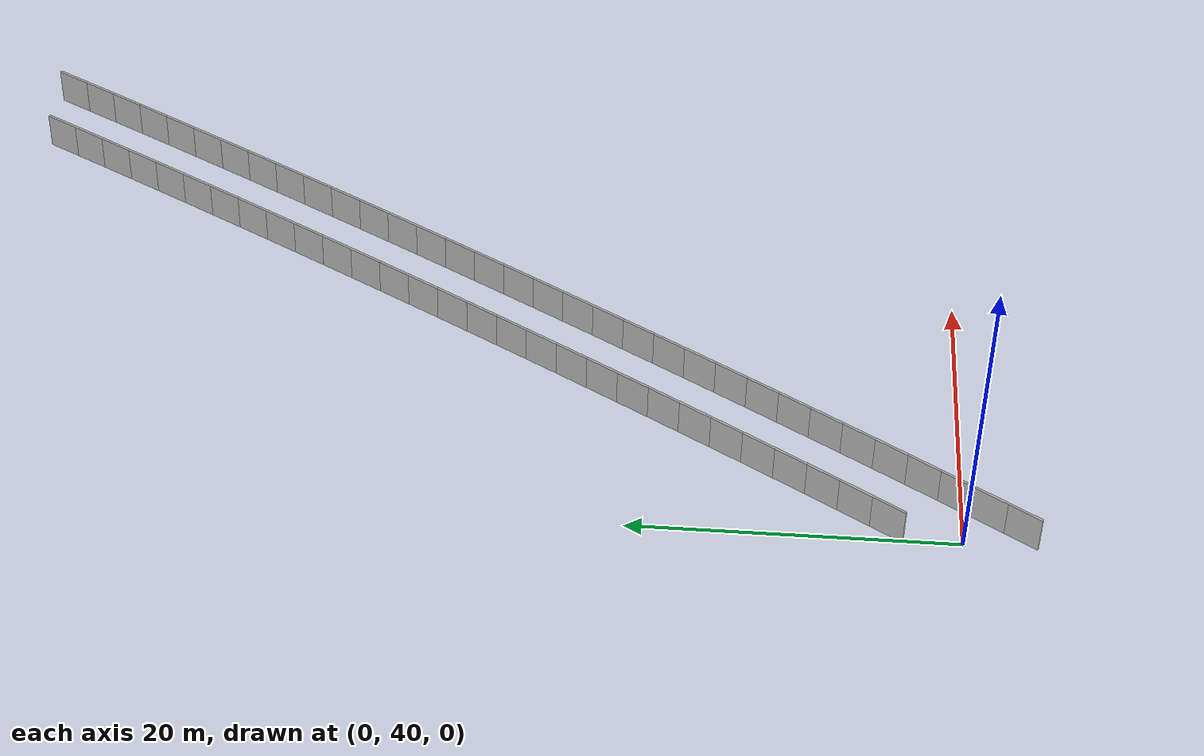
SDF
<?xml version="1.0" ?>
<sdf version="1.6">
  <model name="sps_2207">
    <pose frame="">0 0 0 0 -0 0</pose>
    <static>1</static>
    <self_collide>0</self_collide>
    <allow_auto_disable>0</allow_auto_disable>
    <link name="Wall4354">
      <kinematic>0</kinematic>
      <gravity>1</gravity>
      <self_collide>0</self_collide>
      <collision name="collision">
        <geometry>
          <box>
            <size>2.25463 0.15 2.5</size>
          </box>
        </geometry>
        <pose frame="">0 0 0 0 -0 0</pose>
      </collision>
      <visual name="visual">
        <geometry>
          <box>
            <size>2.25463 0.15 2.5</size>
          </box>
        </geometry>
        <pose frame="">0 0 0 0 -0 0</pose>
        <cast_shadows>1</cast_shadows>
        <transparency>0.0</transparency>
      </visual>
      <pose frame="">0.573356 36.5674 1.25 0 -0 1.01676</pose>
    </link>
    <link name="Wall4355">
      <kinematic>0</kinematic>
      <gravity>1</gravity>
      <self_collide>0</self_collide>
      <collision name="collision">
        <geometry>
          <box>
            <size>2.2547 0.15 2.5</size>
          </box>
        </geometry>
        <pose frame="">0 0 0 0 -0 0</pose>
      </collision>
      <visual name="visual">
        <geometry>
          <box>
            <size>2.2547 0.15 2.5</size>
          </box>
        </geometry>
        <pose frame="">0 0 0 0 -0 0</pose>
        <cast_shadows>1</cast_shadows>
        <transparency>0.0</transparency>
      </visual>
      <pose frame="">1.75716 38.4863 1.25 0 -0 1.01929</pose>
    </link>
    <link name="Wall4356">
      <kinematic>0</kinematic>
      <gravity>1</gravity>
      <self_collide>0</self_collide>
      <collision name="collision">
        <geometry>
          <box>
            <size>2.25464 0.15 2.5</size>
          </box>
        </geometry>
        <pose frame="">0 0 0 0 -0 0</pose>
      </collision>
      <visual name="visual">
        <geometry>
          <box>
            <size>2.25464 0.15 2.5</size>
          </box>
        </geometry>
        <pose frame="">0 0 0 0 -0 0</pose>
        <cast_shadows>1</cast_shadows>
        <transparency>0.0</transparency>
      </visual>
      <pose frame="">2.93636 40.408 1.25 0 -0 1.02156</pose>
    </link>
    <link name="Wall4357">
      <kinematic>0</kinematic>
      <gravity>1</gravity>
      <self_collide>0</self_collide>
      <collision name="collision">
        <geometry>
          <box>
            <size>2.25463 0.15 2.5</size>
          </box>
        </geometry>
        <pose frame="">0 0 0 0 -0 0</pose>
      </collision>
      <visual name="visual">
        <geometry>
          <box>
            <size>2.25463 0.15 2.5</size>
          </box>
        </geometry>
        <pose frame="">0 0 0 0 -0 0</pose>
        <cast_shadows>1</cast_shadows>
        <transparency>0.0</transparency>
      </visual>
      <pose frame="">4.11095 42.3325 1.25 0 -0 1.02406</pose>
    </link>
    <link name="Wall4358">
      <kinematic>0</kinematic>
      <gravity>1</gravity>
      <self_collide>0</self_collide>
      <collision name="collision">
        <geometry>
          <box>
            <size>2.25459 0.15 2.5</size>
          </box>
        </geometry>
        <pose frame="">0 0 0 0 -0 0</pose>
      </collision>
      <visual name="visual">
        <geometry>
          <box>
            <size>2.25459 0.15 2.5</size>
          </box>
        </geometry>
        <pose frame="">0 0 0 0 -0 0</pose>
        <cast_shadows>1</cast_shadows>
        <transparency>0.0</transparency>
      </visual>
      <pose frame="">5.28094 44.2598 1.25 0 -0 1.02633</pose>
    </link>
    <link name="Wall4359">
      <kinematic>0</kinematic>
      <gravity>1</gravity>
      <self_collide>0</self_collide>
      <collision name="collision">
        <geometry>
          <box>
            <size>2.25531 0.15 2.5</size>
          </box>
        </geometry>
        <pose frame="">0 0 0 0 -0 0</pose>
      </collision>
      <visual name="visual">
        <geometry>
          <box>
            <size>2.25531 0.15 2.5</size>
          </box>
        </geometry>
        <pose frame="">0 0 0 0 -0 0</pose>
        <cast_shadows>1</cast_shadows>
        <transparency>0.0</transparency>
      </visual>
      <pose frame="">6.44674 46.19 1.25 0 -0 1.02858</pose>
    </link>
    <link name="Wall4360">
      <kinematic>0</kinematic>
      <gravity>1</gravity>
      <self_collide>0</self_collide>
      <collision name="collision">
        <geometry>
          <box>
            <size>2.25468 0.15 2.5</size>
          </box>
        </geometry>
        <pose frame="">0 0 0 0 -0 0</pose>
      </collision>
      <visual name="visual">
        <geometry>
          <box>
            <size>2.25468 0.15 2.5</size>
          </box>
        </geometry>
        <pose frame="">0 0 0 0 -0 0</pose>
        <cast_shadows>1</cast_shadows>
        <transparency>0.0</transparency>
      </visual>
      <pose frame="">7.60796 48.123 1.25 0 -0 1.0311</pose>
    </link>
    <link name="Wall4361">
      <kinematic>0</kinematic>
      <gravity>1</gravity>
      <self_collide>0</self_collide>
      <collision name="collision">
        <geometry>
          <box>
            <size>2.25437 0.15 2.5</size>
          </box>
        </geometry>
        <pose frame="">0 0 0 0 -0 0</pose>
      </collision>
      <visual name="visual">
        <geometry>
          <box>
            <size>2.25437 0.15 2.5</size>
          </box>
        </geometry>
        <pose frame="">0 0 0 0 -0 0</pose>
        <cast_shadows>1</cast_shadows>
        <transparency>0.0</transparency>
      </visual>
      <pose frame="">8.76415 50.0585 1.25 0 -0 1.03354</pose>
    </link>
    <link name="Wall4362">
      <kinematic>0</kinematic>
      <gravity>1</gravity>
      <self_collide>0</self_collide>
      <collision name="collision">
        <geometry>
          <box>
            <size>2.25463 0.15 2.5</size>
          </box>
        </geometry>
        <pose frame="">0 0 0 0 -0 0</pose>
      </collision>
      <visual name="visual">
        <geometry>
          <box>
            <size>2.25463 0.15 2.5</size>
          </box>
        </geometry>
        <pose frame="">0 0 0 0 -0 0</pose>
        <cast_shadows>1</cast_shadows>
        <transparency>0.0</transparency>
      </visual>
      <pose frame="">9.91573 51.9967 1.25 0 -0 1.03584</pose>
    </link>
    <link name="Wall4363">
      <kinematic>0</kinematic>
      <gravity>1</gravity>
      <self_collide>0</self_collide>
      <collision name="collision">
        <geometry>
          <box>
            <size>2.25482 0.15 2.5</size>
          </box>
        </geometry>
        <pose frame="">0 0 0 0 -0 0</pose>
      </collision>
      <visual name="visual">
        <geometry>
          <box>
            <size>2.25482 0.15 2.5</size>
          </box>
        </geometry>
        <pose frame="">0 0 0 0 -0 0</pose>
        <cast_shadows>1</cast_shadows>
        <transparency>0.0</transparency>
      </visual>
      <pose frame="">11.0629 53.9378 1.25 0 -0 1.03825</pose>
    </link>
    <link name="Wall4364">
      <kinematic>0</kinematic>
      <gravity>1</gravity>
      <self_collide>0</self_collide>
      <collision name="collision">
        <geometry>
          <box>
            <size>2.25383 0.15 2.5</size>
          </box>
        </geometry>
        <pose frame="">0 0 0 0 -0 0</pose>
      </collision>
      <visual name="visual">
        <geometry>
          <box>
            <size>2.25383 0.15 2.5</size>
          </box>
        </geometry>
        <pose frame="">0 0 0 0 -0 0</pose>
        <cast_shadows>1</cast_shadows>
        <transparency>0.0</transparency>
      </visual>
      <pose frame="">12.2052 55.8813 1.25 0 -0 1.0406</pose>
    </link>
    <link name="Wall4365">
      <kinematic>0</kinematic>
      <gravity>1</gravity>
      <self_collide>0</self_collide>
      <collision name="collision">
        <geometry>
          <box>
            <size>2.25475 0.15 2.5</size>
          </box>
        </geometry>
        <pose frame="">0 0 0 0 -0 0</pose>
      </collision>
      <visual name="visual">
        <geometry>
          <box>
            <size>2.25475 0.15 2.5</size>
          </box>
        </geometry>
        <pose frame="">0 0 0 0 -0 0</pose>
        <cast_shadows>1</cast_shadows>
        <transparency>0.0</transparency>
      </visual>
      <pose frame="">13.3428 57.8275 1.25 0 -0 1.04306</pose>
    </link>
    <link name="Wall4366">
      <kinematic>0</kinematic>
      <gravity>1</gravity>
      <self_collide>0</self_collide>
      <collision name="collision">
        <geometry>
          <box>
            <size>2.25478 0.15 2.5</size>
          </box>
        </geometry>
        <pose frame="">0 0 0 0 -0 0</pose>
      </collision>
      <visual name="visual">
        <geometry>
          <box>
            <size>2.25478 0.15 2.5</size>
          </box>
        </geometry>
        <pose frame="">0 0 0 0 -0 0</pose>
        <cast_shadows>1</cast_shadows>
        <transparency>0.0</transparency>
      </visual>
      <pose frame="">14.476 59.7768 1.25 0 -0 1.04536</pose>
    </link>
    <link name="Wall4367">
      <kinematic>0</kinematic>
      <gravity>1</gravity>
      <self_collide>0</self_collide>
      <collision name="collision">
        <geometry>
          <box>
            <size>2.25446 0.15 2.5</size>
          </box>
        </geometry>
        <pose frame="">0 0 0 0 -0 0</pose>
      </collision>
      <visual name="visual">
        <geometry>
          <box>
            <size>2.25446 0.15 2.5</size>
          </box>
        </geometry>
        <pose frame="">0 0 0 0 -0 0</pose>
        <cast_shadows>1</cast_shadows>
        <transparency>0.0</transparency>
      </visual>
      <pose frame="">15.6046 61.7286 1.25 0 -0 1.04771</pose>
    </link>
    <link name="Wall4368">
      <kinematic>0</kinematic>
      <gravity>1</gravity>
      <self_collide>0</self_collide>
      <collision name="collision">
        <geometry>
          <box>
            <size>2.25458 0.15 2.5</size>
          </box>
        </geometry>
        <pose frame="">0 0 0 0 -0 0</pose>
      </collision>
      <visual name="visual">
        <geometry>
          <box>
            <size>2.25458 0.15 2.5</size>
          </box>
        </geometry>
        <pose frame="">0 0 0 0 -0 0</pose>
        <cast_shadows>1</cast_shadows>
        <transparency>0.0</transparency>
      </visual>
      <pose frame="">16.7285 63.683 1.25 0 -0 1.05012</pose>
    </link>
    <link name="Wall4369">
      <kinematic>0</kinematic>
      <gravity>1</gravity>
      <self_collide>0</self_collide>
      <collision name="collision">
        <geometry>
          <box>
            <size>2.25453 0.15 2.5</size>
          </box>
        </geometry>
        <pose frame="">0 0 0 0 -0 0</pose>
      </collision>
      <visual name="visual">
        <geometry>
          <box>
            <size>2.25453 0.15 2.5</size>
          </box>
        </geometry>
        <pose frame="">0 0 0 0 -0 0</pose>
        <cast_shadows>1</cast_shadows>
        <transparency>0.0</transparency>
      </visual>
      <pose frame="">17.8478 65.6401 1.25 0 -0 1.05245</pose>
    </link>
    <link name="Wall4370">
      <kinematic>0</kinematic>
      <gravity>1</gravity>
      <self_collide>0</self_collide>
      <collision name="collision">
        <geometry>
          <box>
            <size>2.25489 0.15 2.5</size>
          </box>
        </geometry>
        <pose frame="">0 0 0 0 -0 0</pose>
      </collision>
      <visual name="visual">
        <geometry>
          <box>
            <size>2.25489 0.15 2.5</size>
          </box>
        </geometry>
        <pose frame="">0 0 0 0 -0 0</pose>
        <cast_shadows>1</cast_shadows>
        <transparency>0.0</transparency>
      </visual>
      <pose frame="">18.9625 67.6 1.25 0 -0 1.0549</pose>
    </link>
    <link name="Wall4371">
      <kinematic>0</kinematic>
      <gravity>1</gravity>
      <self_collide>0</self_collide>
      <collision name="collision">
        <geometry>
          <box>
            <size>2.25441 0.15 2.5</size>
          </box>
        </geometry>
        <pose frame="">0 0 0 0 -0 0</pose>
      </collision>
      <visual name="visual">
        <geometry>
          <box>
            <size>2.25441 0.15 2.5</size>
          </box>
        </geometry>
        <pose frame="">0 0 0 0 -0 0</pose>
        <cast_shadows>1</cast_shadows>
        <transparency>0.0</transparency>
      </visual>
      <pose frame="">20.0724 69.5625 1.25 0 -0 1.05721</pose>
    </link>
    <link name="Wall4372">
      <kinematic>0</kinematic>
      <gravity>1</gravity>
      <self_collide>0</self_collide>
      <collision name="collision">
        <geometry>
          <box>
            <size>2.25467 0.15 2.5</size>
          </box>
        </geometry>
        <pose frame="">0 0 0 0 -0 0</pose>
      </collision>
      <visual name="visual">
        <geometry>
          <box>
            <size>2.25467 0.15 2.5</size>
          </box>
        </geometry>
        <pose frame="">0 0 0 0 -0 0</pose>
        <cast_shadows>1</cast_shadows>
        <transparency>0.0</transparency>
      </visual>
      <pose frame="">21.1778 71.5275 1.25 0 -0 1.0596</pose>
    </link>
    <link name="Wall4373">
      <kinematic>0</kinematic>
      <gravity>1</gravity>
      <self_collide>0</self_collide>
      <collision name="collision">
        <geometry>
          <box>
            <size>2.2548 0.15 2.5</size>
          </box>
        </geometry>
        <pose frame="">0 0 0 0 -0 0</pose>
      </collision>
      <visual name="visual">
        <geometry>
          <box>
            <size>2.2548 0.15 2.5</size>
          </box>
        </geometry>
        <pose frame="">0 0 0 0 -0 0</pose>
        <cast_shadows>1</cast_shadows>
        <transparency>0.0</transparency>
      </visual>
      <pose frame="">22.2785 73.4953 1.25 0 -0 1.06199</pose>
    </link>
    <link name="Wall4374">
      <kinematic>0</kinematic>
      <gravity>1</gravity>
      <self_collide>0</self_collide>
      <collision name="collision">
        <geometry>
          <box>
            <size>2.2545 0.15 2.5</size>
          </box>
        </geometry>
        <pose frame="">0 0 0 0 -0 0</pose>
      </collision>
      <visual name="visual">
        <geometry>
          <box>
            <size>2.2545 0.15 2.5</size>
          </box>
        </geometry>
        <pose frame="">0 0 0 0 -0 0</pose>
        <cast_shadows>1</cast_shadows>
        <transparency>0.0</transparency>
      </visual>
      <pose frame="">23.3744 75.4657 1.25 0 -0 1.06446</pose>
    </link>
    <link name="Wall4375">
      <kinematic>0</kinematic>
      <gravity>1</gravity>
      <self_collide>0</self_collide>
      <collision name="collision">
        <geometry>
          <box>
            <size>2.25473 0.15 2.5</size>
          </box>
        </geometry>
        <pose frame="">0 0 0 0 -0 0</pose>
      </collision>
      <visual name="visual">
        <geometry>
          <box>
            <size>2.25473 0.15 2.5</size>
          </box>
        </geometry>
        <pose frame="">0 0 0 0 -0 0</pose>
        <cast_shadows>1</cast_shadows>
        <transparency>0.0</transparency>
      </visual>
      <pose frame="">24.4657 77.4386 1.25 0 -0 1.06662</pose>
    </link>
    <link name="Wall4376">
      <kinematic>0</kinematic>
      <gravity>1</gravity>
      <self_collide>0</self_collide>
      <collision name="collision">
        <geometry>
          <box>
            <size>2.25459 0.15 2.5</size>
          </box>
        </geometry>
        <pose frame="">0 0 0 0 -0 0</pose>
      </collision>
      <visual name="visual">
        <geometry>
          <box>
            <size>2.25459 0.15 2.5</size>
          </box>
        </geometry>
        <pose frame="">0 0 0 0 -0 0</pose>
        <cast_shadows>1</cast_shadows>
        <transparency>0.0</transparency>
      </visual>
      <pose frame="">25.5524 79.4141 1.25 0 -0 1.06915</pose>
    </link>
    <link name="Wall4377">
      <kinematic>0</kinematic>
      <gravity>1</gravity>
      <self_collide>0</self_collide>
      <collision name="collision">
        <geometry>
          <box>
            <size>2.2547 0.15 2.5</size>
          </box>
        </geometry>
        <pose frame="">0 0 0 0 -0 0</pose>
      </collision>
      <visual name="visual">
        <geometry>
          <box>
            <size>2.2547 0.15 2.5</size>
          </box>
        </geometry>
        <pose frame="">0 0 0 0 -0 0</pose>
        <cast_shadows>1</cast_shadows>
        <transparency>0.0</transparency>
      </visual>
      <pose frame="">26.6342 81.3922 1.25 0 -0 1.07149</pose>
    </link>
    <link name="Wall4378">
      <kinematic>0</kinematic>
      <gravity>1</gravity>
      <self_collide>0</self_collide>
      <collision name="collision">
        <geometry>
          <box>
            <size>2.25443 0.15 2.5</size>
          </box>
        </geometry>
        <pose frame="">0 0 0 0 -0 0</pose>
      </collision>
      <visual name="visual">
        <geometry>
          <box>
            <size>2.25443 0.15 2.5</size>
          </box>
        </geometry>
        <pose frame="">0 0 0 0 -0 0</pose>
        <cast_shadows>1</cast_shadows>
        <transparency>0.0</transparency>
      </visual>
      <pose frame="">27.7114 83.3728 1.25 0 -0 1.07392</pose>
    </link>
    <link name="Wall4379">
      <kinematic>0</kinematic>
      <gravity>1</gravity>
      <self_collide>0</self_collide>
      <collision name="collision">
        <geometry>
          <box>
            <size>2.25472 0.15 2.5</size>
          </box>
        </geometry>
        <pose frame="">0 0 0 0 -0 0</pose>
      </collision>
      <visual name="visual">
        <geometry>
          <box>
            <size>2.25472 0.15 2.5</size>
          </box>
        </geometry>
        <pose frame="">0 0 0 0 -0 0</pose>
        <cast_shadows>1</cast_shadows>
        <transparency>0.0</transparency>
      </visual>
      <pose frame="">28.7838 85.356 1.25 0 -0 1.07624</pose>
    </link>
    <link name="Wall4380">
      <kinematic>0</kinematic>
      <gravity>1</gravity>
      <self_collide>0</self_collide>
      <collision name="collision">
        <geometry>
          <box>
            <size>2.25487 0.15 2.5</size>
          </box>
        </geometry>
        <pose frame="">0 0 0 0 -0 0</pose>
      </collision>
      <visual name="visual">
        <geometry>
          <box>
            <size>2.25487 0.15 2.5</size>
          </box>
        </geometry>
        <pose frame="">0 0 0 0 -0 0</pose>
        <cast_shadows>1</cast_shadows>
        <transparency>0.0</transparency>
      </visual>
      <pose frame="">29.8517 87.3419 1.25 0 -0 1.07858</pose>
    </link>
    <link name="Wall4381">
      <kinematic>0</kinematic>
      <gravity>1</gravity>
      <self_collide>0</self_collide>
      <collision name="collision">
        <geometry>
          <box>
            <size>2.25405 0.15 2.5</size>
          </box>
        </geometry>
        <pose frame="">0 0 0 0 -0 0</pose>
      </collision>
      <visual name="visual">
        <geometry>
          <box>
            <size>2.25405 0.15 2.5</size>
          </box>
        </geometry>
        <pose frame="">0 0 0 0 -0 0</pose>
        <cast_shadows>1</cast_shadows>
        <transparency>0.0</transparency>
      </visual>
      <pose frame="">30.9145 89.3301 1.25 0 -0 1.08121</pose>
    </link>
    <link name="Wall4382">
      <kinematic>0</kinematic>
      <gravity>1</gravity>
      <self_collide>0</self_collide>
      <collision name="collision">
        <geometry>
          <box>
            <size>2.25453 0.15 2.5</size>
          </box>
        </geometry>
        <pose frame="">0 0 0 0 -0 0</pose>
      </collision>
      <visual name="visual">
        <geometry>
          <box>
            <size>2.25453 0.15 2.5</size>
          </box>
        </geometry>
        <pose frame="">0 0 0 0 -0 0</pose>
        <cast_shadows>1</cast_shadows>
        <transparency>0.0</transparency>
      </visual>
      <pose frame="">31.9725 91.3207 1.25 0 -0 1.08334</pose>
    </link>
    <link name="Wall4383">
      <kinematic>0</kinematic>
      <gravity>1</gravity>
      <self_collide>0</self_collide>
      <collision name="collision">
        <geometry>
          <box>
            <size>2.25477 0.15 2.5</size>
          </box>
        </geometry>
        <pose frame="">0 0 0 0 -0 0</pose>
      </collision>
      <visual name="visual">
        <geometry>
          <box>
            <size>2.25477 0.15 2.5</size>
          </box>
        </geometry>
        <pose frame="">0 0 0 0 -0 0</pose>
        <cast_shadows>1</cast_shadows>
        <transparency>0.0</transparency>
      </visual>
      <pose frame="">33.0261 93.314 1.25 0 -0 1.0857</pose>
    </link>
    <link name="Wall4384">
      <kinematic>0</kinematic>
      <gravity>1</gravity>
      <self_collide>0</self_collide>
      <collision name="collision">
        <geometry>
          <box>
            <size>2.25471 0.15 2.5</size>
          </box>
        </geometry>
        <pose frame="">0 0 0 0 -0 0</pose>
      </collision>
      <visual name="visual">
        <geometry>
          <box>
            <size>2.25471 0.15 2.5</size>
          </box>
        </geometry>
        <pose frame="">0 0 0 0 -0 0</pose>
        <cast_shadows>1</cast_shadows>
        <transparency>0.0</transparency>
      </visual>
      <pose frame="">34.075 95.3099 1.25 0 -0 1.08819</pose>
    </link>
    <link name="Wall4385">
      <kinematic>0</kinematic>
      <gravity>1</gravity>
      <self_collide>0</self_collide>
      <collision name="collision">
        <geometry>
          <box>
            <size>2.25445 0.15 2.5</size>
          </box>
        </geometry>
        <pose frame="">0 0 0 0 -0 0</pose>
      </collision>
      <visual name="visual">
        <geometry>
          <box>
            <size>2.25445 0.15 2.5</size>
          </box>
        </geometry>
        <pose frame="">0 0 0 0 -0 0</pose>
        <cast_shadows>1</cast_shadows>
        <transparency>0.0</transparency>
      </visual>
      <pose frame="">35.119 97.3082 1.25 0 -0 1.09051</pose>
    </link>
    <link name="Wall4386">
      <kinematic>0</kinematic>
      <gravity>1</gravity>
      <self_collide>0</self_collide>
      <collision name="collision">
        <geometry>
          <box>
            <size>2.2548 0.15 2.5</size>
          </box>
        </geometry>
        <pose frame="">0 0 0 0 -0 0</pose>
      </collision>
      <visual name="visual">
        <geometry>
          <box>
            <size>2.2548 0.15 2.5</size>
          </box>
        </geometry>
        <pose frame="">0 0 0 0 -0 0</pose>
        <cast_shadows>1</cast_shadows>
        <transparency>0.0</transparency>
      </visual>
      <pose frame="">36.1583 99.309 1.25 0 -0 1.09291</pose>
    </link>
    <link name="Wall6082">
      <kinematic>0</kinematic>
      <gravity>1</gravity>
      <self_collide>0</self_collide>
      <collision name="collision">
        <geometry>
          <box>
            <size>2.24485 0.15 2.5</size>
          </box>
        </geometry>
        <pose frame="">0 0 0 0 -0 0</pose>
      </collision>
      <visual name="visual">
        <geometry>
          <box>
            <size>2.24485 0.15 2.5</size>
          </box>
        </geometry>
        <pose frame="">0 0 0 0 -0 0</pose>
        <cast_shadows>1</cast_shadows>
        <transparency>0.0</transparency>
      </visual>
      <pose frame="">0.575553 44.4854 1.25 0 -0 1.0239</pose>
    </link>
    <link name="Wall6083">
      <kinematic>0</kinematic>
      <gravity>1</gravity>
      <self_collide>0</self_collide>
      <collision name="collision">
        <geometry>
          <box>
            <size>2.2447 0.15 2.5</size>
          </box>
        </geometry>
        <pose frame="">0 0 0 0 -0 0</pose>
      </collision>
      <visual name="visual">
        <geometry>
          <box>
            <size>2.2447 0.15 2.5</size>
          </box>
        </geometry>
        <pose frame="">0 0 0 0 -0 0</pose>
        <cast_shadows>1</cast_shadows>
        <transparency>0.0</transparency>
      </visual>
      <pose frame="">1.74056 46.4042 1.25 0 -0 1.02637</pose>
    </link>
    <link name="Wall6084">
      <kinematic>0</kinematic>
      <gravity>1</gravity>
      <self_collide>0</self_collide>
      <collision name="collision">
        <geometry>
          <box>
            <size>2.24479 0.15 2.5</size>
          </box>
        </geometry>
        <pose frame="">0 0 0 0 -0 0</pose>
      </collision>
      <visual name="visual">
        <geometry>
          <box>
            <size>2.24479 0.15 2.5</size>
          </box>
        </geometry>
        <pose frame="">0 0 0 0 -0 0</pose>
        <cast_shadows>1</cast_shadows>
        <transparency>0.0</transparency>
      </visual>
      <pose frame="">2.90087 48.3258 1.25 0 -0 1.02877</pose>
    </link>
    <link name="Wall6085">
      <kinematic>0</kinematic>
      <gravity>1</gravity>
      <self_collide>0</self_collide>
      <collision name="collision">
        <geometry>
          <box>
            <size>2.24469 0.15 2.5</size>
          </box>
        </geometry>
        <pose frame="">0 0 0 0 -0 0</pose>
      </collision>
      <visual name="visual">
        <geometry>
          <box>
            <size>2.24469 0.15 2.5</size>
          </box>
        </geometry>
        <pose frame="">0 0 0 0 -0 0</pose>
        <cast_shadows>1</cast_shadows>
        <transparency>0.0</transparency>
      </visual>
      <pose frame="">4.05666 50.2501 1.25 0 -0 1.03106</pose>
    </link>
    <link name="Wall6086">
      <kinematic>0</kinematic>
      <gravity>1</gravity>
      <self_collide>0</self_collide>
      <collision name="collision">
        <geometry>
          <box>
            <size>2.24491 0.15 2.5</size>
          </box>
        </geometry>
        <pose frame="">0 0 0 0 -0 0</pose>
      </collision>
      <visual name="visual">
        <geometry>
          <box>
            <size>2.24491 0.15 2.5</size>
          </box>
        </geometry>
        <pose frame="">0 0 0 0 -0 0</pose>
        <cast_shadows>1</cast_shadows>
        <transparency>0.0</transparency>
      </visual>
      <pose frame="">5.20794 52.1772 1.25 0 -0 1.0335</pose>
    </link>
    <link name="Wall6087">
      <kinematic>0</kinematic>
      <gravity>1</gravity>
      <self_collide>0</self_collide>
      <collision name="collision">
        <geometry>
          <box>
            <size>2.24536 0.15 2.5</size>
          </box>
        </geometry>
        <pose frame="">0 0 0 0 -0 0</pose>
      </collision>
      <visual name="visual">
        <geometry>
          <box>
            <size>2.24536 0.15 2.5</size>
          </box>
        </geometry>
        <pose frame="">0 0 0 0 -0 0</pose>
        <cast_shadows>1</cast_shadows>
        <transparency>0.0</transparency>
      </visual>
      <pose frame="">6.35485 54.1073 1.25 0 -0 1.03577</pose>
    </link>
    <link name="Wall6088">
      <kinematic>0</kinematic>
      <gravity>1</gravity>
      <self_collide>0</self_collide>
      <collision name="collision">
        <geometry>
          <box>
            <size>2.24405 0.15 2.5</size>
          </box>
        </geometry>
        <pose frame="">0 0 0 0 -0 0</pose>
      </collision>
      <visual name="visual">
        <geometry>
          <box>
            <size>2.24405 0.15 2.5</size>
          </box>
        </geometry>
        <pose frame="">0 0 0 0 -0 0</pose>
        <cast_shadows>1</cast_shadows>
        <transparency>0.0</transparency>
      </visual>
      <pose frame="">7.49685 56.0398 1.25 0 -0 1.03836</pose>
    </link>
    <link name="Wall6089">
      <kinematic>0</kinematic>
      <gravity>1</gravity>
      <self_collide>0</self_collide>
      <collision name="collision">
        <geometry>
          <box>
            <size>2.24468 0.15 2.5</size>
          </box>
        </geometry>
        <pose frame="">0 0 0 0 -0 0</pose>
      </collision>
      <visual name="visual">
        <geometry>
          <box>
            <size>2.24468 0.15 2.5</size>
          </box>
        </geometry>
        <pose frame="">0 0 0 0 -0 0</pose>
        <cast_shadows>1</cast_shadows>
        <transparency>0.0</transparency>
      </visual>
      <pose frame="">8.63393 57.9748 1.25 0 -0 1.04067</pose>
    </link>
    <link name="Wall6090">
      <kinematic>0</kinematic>
      <gravity>1</gravity>
      <self_collide>0</self_collide>
      <collision name="collision">
        <geometry>
          <box>
            <size>2.24482 0.15 2.5</size>
          </box>
        </geometry>
        <pose frame="">0 0 0 0 -0 0</pose>
      </collision>
      <visual name="visual">
        <geometry>
          <box>
            <size>2.24482 0.15 2.5</size>
          </box>
        </geometry>
        <pose frame="">0 0 0 0 -0 0</pose>
        <cast_shadows>1</cast_shadows>
        <transparency>0.0</transparency>
      </visual>
      <pose frame="">9.76684 59.9127 1.25 0 -0 1.04288</pose>
    </link>
    <link name="Wall6091">
      <kinematic>0</kinematic>
      <gravity>1</gravity>
      <self_collide>0</self_collide>
      <collision name="collision">
        <geometry>
          <box>
            <size>2.24486 0.15 2.5</size>
          </box>
        </geometry>
        <pose frame="">0 0 0 0 -0 0</pose>
      </collision>
      <visual name="visual">
        <geometry>
          <box>
            <size>2.24486 0.15 2.5</size>
          </box>
        </geometry>
        <pose frame="">0 0 0 0 -0 0</pose>
        <cast_shadows>1</cast_shadows>
        <transparency>0.0</transparency>
      </visual>
      <pose frame="">10.8953 61.8533 1.25 0 -0 1.04534</pose>
    </link>
    <link name="Wall6092">
      <kinematic>0</kinematic>
      <gravity>1</gravity>
      <self_collide>0</self_collide>
      <collision name="collision">
        <geometry>
          <box>
            <size>2.24476 0.15 2.5</size>
          </box>
        </geometry>
        <pose frame="">0 0 0 0 -0 0</pose>
      </collision>
      <visual name="visual">
        <geometry>
          <box>
            <size>2.24476 0.15 2.5</size>
          </box>
        </geometry>
        <pose frame="">0 0 0 0 -0 0</pose>
        <cast_shadows>1</cast_shadows>
        <transparency>0.0</transparency>
      </visual>
      <pose frame="">12.019 63.7966 1.25 0 -0 1.0477</pose>
    </link>
    <link name="Wall6093">
      <kinematic>0</kinematic>
      <gravity>1</gravity>
      <self_collide>0</self_collide>
      <collision name="collision">
        <geometry>
          <box>
            <size>2.24484 0.15 2.5</size>
          </box>
        </geometry>
        <pose frame="">0 0 0 0 -0 0</pose>
      </collision>
      <visual name="visual">
        <geometry>
          <box>
            <size>2.24484 0.15 2.5</size>
          </box>
        </geometry>
        <pose frame="">0 0 0 0 -0 0</pose>
        <cast_shadows>1</cast_shadows>
        <transparency>0.0</transparency>
      </visual>
      <pose frame="">13.138 65.7426 1.25 0 -0 1.0502</pose>
    </link>
    <link name="Wall6094">
      <kinematic>0</kinematic>
      <gravity>1</gravity>
      <self_collide>0</self_collide>
      <collision name="collision">
        <geometry>
          <box>
            <size>2.24483 0.15 2.5</size>
          </box>
        </geometry>
        <pose frame="">0 0 0 0 -0 0</pose>
      </collision>
      <visual name="visual">
        <geometry>
          <box>
            <size>2.24483 0.15 2.5</size>
          </box>
        </geometry>
        <pose frame="">0 0 0 0 -0 0</pose>
        <cast_shadows>1</cast_shadows>
        <transparency>0.0</transparency>
      </visual>
      <pose frame="">14.2523 67.6913 1.25 0 -0 1.05245</pose>
    </link>
    <link name="Wall6095">
      <kinematic>0</kinematic>
      <gravity>1</gravity>
      <self_collide>0</self_collide>
      <collision name="collision">
        <geometry>
          <box>
            <size>2.24481 0.15 2.5</size>
          </box>
        </geometry>
        <pose frame="">0 0 0 0 -0 0</pose>
      </collision>
      <visual name="visual">
        <geometry>
          <box>
            <size>2.24481 0.15 2.5</size>
          </box>
        </geometry>
        <pose frame="">0 0 0 0 -0 0</pose>
        <cast_shadows>1</cast_shadows>
        <transparency>0.0</transparency>
      </visual>
      <pose frame="">15.3621 69.6426 1.25 0 -0 1.05489</pose>
    </link>
    <link name="Wall6096">
      <kinematic>0</kinematic>
      <gravity>1</gravity>
      <self_collide>0</self_collide>
      <collision name="collision">
        <geometry>
          <box>
            <size>2.24476 0.15 2.5</size>
          </box>
        </geometry>
        <pose frame="">0 0 0 0 -0 0</pose>
      </collision>
      <visual name="visual">
        <geometry>
          <box>
            <size>2.24476 0.15 2.5</size>
          </box>
        </geometry>
        <pose frame="">0 0 0 0 -0 0</pose>
        <cast_shadows>1</cast_shadows>
        <transparency>0.0</transparency>
      </visual>
      <pose frame="">16.4672 71.5965 1.25 0 -0 1.05725</pose>
    </link>
    <link name="Wall6097">
      <kinematic>0</kinematic>
      <gravity>1</gravity>
      <self_collide>0</self_collide>
      <collision name="collision">
        <geometry>
          <box>
            <size>2.24475 0.15 2.5</size>
          </box>
        </geometry>
        <pose frame="">0 0 0 0 -0 0</pose>
      </collision>
      <visual name="visual">
        <geometry>
          <box>
            <size>2.24475 0.15 2.5</size>
          </box>
        </geometry>
        <pose frame="">0 0 0 0 -0 0</pose>
        <cast_shadows>1</cast_shadows>
        <transparency>0.0</transparency>
      </visual>
      <pose frame="">17.5677 73.553 1.25 0 -0 1.05959</pose>
    </link>
    <link name="Wall6098">
      <kinematic>0</kinematic>
      <gravity>1</gravity>
      <self_collide>0</self_collide>
      <collision name="collision">
        <geometry>
          <box>
            <size>2.24468 0.15 2.5</size>
          </box>
        </geometry>
        <pose frame="">0 0 0 0 -0 0</pose>
      </collision>
      <visual name="visual">
        <geometry>
          <box>
            <size>2.24468 0.15 2.5</size>
          </box>
        </geometry>
        <pose frame="">0 0 0 0 -0 0</pose>
        <cast_shadows>1</cast_shadows>
        <transparency>0.0</transparency>
      </visual>
      <pose frame="">18.6635 75.5121 1.25 0 -0 1.06203</pose>
    </link>
    <link name="Wall6099">
      <kinematic>0</kinematic>
      <gravity>1</gravity>
      <self_collide>0</self_collide>
      <collision name="collision">
        <geometry>
          <box>
            <size>2.24509 0.15 2.5</size>
          </box>
        </geometry>
        <pose frame="">0 0 0 0 -0 0</pose>
      </collision>
      <visual name="visual">
        <geometry>
          <box>
            <size>2.24509 0.15 2.5</size>
          </box>
        </geometry>
        <pose frame="">0 0 0 0 -0 0</pose>
        <cast_shadows>1</cast_shadows>
        <transparency>0.0</transparency>
      </visual>
      <pose frame="">19.7548 77.4739 1.25 0 -0 1.06434</pose>
    </link>
    <link name="Wall6100">
      <kinematic>0</kinematic>
      <gravity>1</gravity>
      <self_collide>0</self_collide>
      <collision name="collision">
        <geometry>
          <box>
            <size>2.24475 0.15 2.5</size>
          </box>
        </geometry>
        <pose frame="">0 0 0 0 -0 0</pose>
      </collision>
      <visual name="visual">
        <geometry>
          <box>
            <size>2.24475 0.15 2.5</size>
          </box>
        </geometry>
        <pose frame="">0 0 0 0 -0 0</pose>
        <cast_shadows>1</cast_shadows>
        <transparency>0.0</transparency>
      </visual>
      <pose frame="">20.8414 79.4383 1.25 0 -0 1.06674</pose>
    </link>
    <link name="Wall6101">
      <kinematic>0</kinematic>
      <gravity>1</gravity>
      <self_collide>0</self_collide>
      <collision name="collision">
        <geometry>
          <box>
            <size>2.24484 0.15 2.5</size>
          </box>
        </geometry>
        <pose frame="">0 0 0 0 -0 0</pose>
      </collision>
      <visual name="visual">
        <geometry>
          <box>
            <size>2.24484 0.15 2.5</size>
          </box>
        </geometry>
        <pose frame="">0 0 0 0 -0 0</pose>
        <cast_shadows>1</cast_shadows>
        <transparency>0.0</transparency>
      </visual>
      <pose frame="">21.9232 81.4052 1.25 0 -0 1.06909</pose>
    </link>
    <link name="Wall6102">
      <kinematic>0</kinematic>
      <gravity>1</gravity>
      <self_collide>0</self_collide>
      <collision name="collision">
        <geometry>
          <box>
            <size>2.24456 0.15 2.5</size>
          </box>
        </geometry>
        <pose frame="">0 0 0 0 -0 0</pose>
      </collision>
      <visual name="visual">
        <geometry>
          <box>
            <size>2.24456 0.15 2.5</size>
          </box>
        </geometry>
        <pose frame="">0 0 0 0 -0 0</pose>
        <cast_shadows>1</cast_shadows>
        <transparency>0.0</transparency>
      </visual>
      <pose frame="">23.0004 83.3746 1.25 0 -0 1.07153</pose>
    </link>
    <link name="Wall6103">
      <kinematic>0</kinematic>
      <gravity>1</gravity>
      <self_collide>0</self_collide>
      <collision name="collision">
        <geometry>
          <box>
            <size>2.2449 0.15 2.5</size>
          </box>
        </geometry>
        <pose frame="">0 0 0 0 -0 0</pose>
      </collision>
      <visual name="visual">
        <geometry>
          <box>
            <size>2.2449 0.15 2.5</size>
          </box>
        </geometry>
        <pose frame="">0 0 0 0 -0 0</pose>
        <cast_shadows>1</cast_shadows>
        <transparency>0.0</transparency>
      </visual>
      <pose frame="">24.0728 85.3466 1.25 0 -0 1.07388</pose>
    </link>
    <link name="Wall6104">
      <kinematic>0</kinematic>
      <gravity>1</gravity>
      <self_collide>0</self_collide>
      <collision name="collision">
        <geometry>
          <box>
            <size>2.24475 0.15 2.5</size>
          </box>
        </geometry>
        <pose frame="">0 0 0 0 -0 0</pose>
      </collision>
      <visual name="visual">
        <geometry>
          <box>
            <size>2.24475 0.15 2.5</size>
          </box>
        </geometry>
        <pose frame="">0 0 0 0 -0 0</pose>
        <cast_shadows>1</cast_shadows>
        <transparency>0.0</transparency>
      </visual>
      <pose frame="">25.1406 87.3212 1.25 0 -0 1.07628</pose>
    </link>
    <link name="Wall6105">
      <kinematic>0</kinematic>
      <gravity>1</gravity>
      <self_collide>0</self_collide>
      <collision name="collision">
        <geometry>
          <box>
            <size>2.24413 0.15 2.5</size>
          </box>
        </geometry>
        <pose frame="">0 0 0 0 -0 0</pose>
      </collision>
      <visual name="visual">
        <geometry>
          <box>
            <size>2.24413 0.15 2.5</size>
          </box>
        </geometry>
        <pose frame="">0 0 0 0 -0 0</pose>
        <cast_shadows>1</cast_shadows>
        <transparency>0.0</transparency>
      </visual>
      <pose frame="">26.2035 89.298 1.25 0 -0 1.07863</pose>
    </link>
    <link name="Wall6106">
      <kinematic>0</kinematic>
      <gravity>1</gravity>
      <self_collide>0</self_collide>
      <collision name="collision">
        <geometry>
          <box>
            <size>2.24488 0.15 2.5</size>
          </box>
        </geometry>
        <pose frame="">0 0 0 0 -0 0</pose>
      </collision>
      <visual name="visual">
        <geometry>
          <box>
            <size>2.24488 0.15 2.5</size>
          </box>
        </geometry>
        <pose frame="">0 0 0 0 -0 0</pose>
        <cast_shadows>1</cast_shadows>
        <transparency>0.0</transparency>
      </visual>
      <pose frame="">27.2616 91.2774 1.25 0 -0 1.08106</pose>
    </link>
    <link name="Wall6107">
      <kinematic>0</kinematic>
      <gravity>1</gravity>
      <self_collide>0</self_collide>
      <collision name="collision">
        <geometry>
          <box>
            <size>2.24491 0.15 2.5</size>
          </box>
        </geometry>
        <pose frame="">0 0 0 0 -0 0</pose>
      </collision>
      <visual name="visual">
        <geometry>
          <box>
            <size>2.24491 0.15 2.5</size>
          </box>
        </geometry>
        <pose frame="">0 0 0 0 -0 0</pose>
        <cast_shadows>1</cast_shadows>
        <transparency>0.0</transparency>
      </visual>
      <pose frame="">28.3152 93.2597 1.25 0 -0 1.08347</pose>
    </link>
    <link name="Wall6108">
      <kinematic>0</kinematic>
      <gravity>1</gravity>
      <self_collide>0</self_collide>
      <collision name="collision">
        <geometry>
          <box>
            <size>2.24473 0.15 2.5</size>
          </box>
        </geometry>
        <pose frame="">0 0 0 0 -0 0</pose>
      </collision>
      <visual name="visual">
        <geometry>
          <box>
            <size>2.24473 0.15 2.5</size>
          </box>
        </geometry>
        <pose frame="">0 0 0 0 -0 0</pose>
        <cast_shadows>1</cast_shadows>
        <transparency>0.0</transparency>
      </visual>
      <pose frame="">29.3643 95.2443 1.25 0 -0 1.08555</pose>
    </link>
    <link name="Wall6109">
      <kinematic>0</kinematic>
      <gravity>1</gravity>
      <self_collide>0</self_collide>
      <collision name="collision">
        <geometry>
          <box>
            <size>2.24488 0.15 2.5</size>
          </box>
        </geometry>
        <pose frame="">0 0 0 0 -0 0</pose>
      </collision>
      <visual name="visual">
        <geometry>
          <box>
            <size>2.24488 0.15 2.5</size>
          </box>
        </geometry>
        <pose frame="">0 0 0 0 -0 0</pose>
        <cast_shadows>1</cast_shadows>
        <transparency>0.0</transparency>
      </visual>
      <pose frame="">30.4088 97.2313 1.25 0 -0 1.08811</pose>
    </link>
    <link name="Wall6110">
      <kinematic>0</kinematic>
      <gravity>1</gravity>
      <self_collide>0</self_collide>
      <collision name="collision">
        <geometry>
          <box>
            <size>2.24492 0.15 2.5</size>
          </box>
        </geometry>
        <pose frame="">0 0 0 0 -0 0</pose>
      </collision>
      <visual name="visual">
        <geometry>
          <box>
            <size>2.24492 0.15 2.5</size>
          </box>
        </geometry>
        <pose frame="">0 0 0 0 -0 0</pose>
        <cast_shadows>1</cast_shadows>
        <transparency>0.0</transparency>
      </visual>
      <pose frame="">31.4484 99.221 1.25 0 -0 1.0906</pose>
    </link>
  </model>
</sdf>
